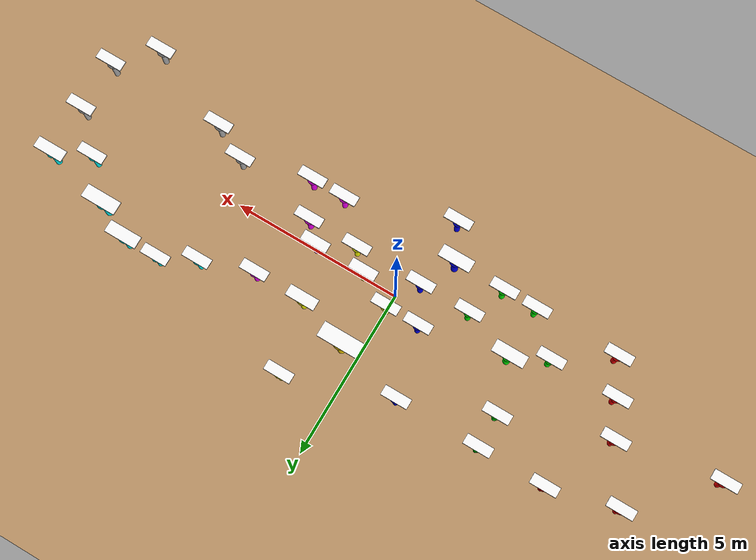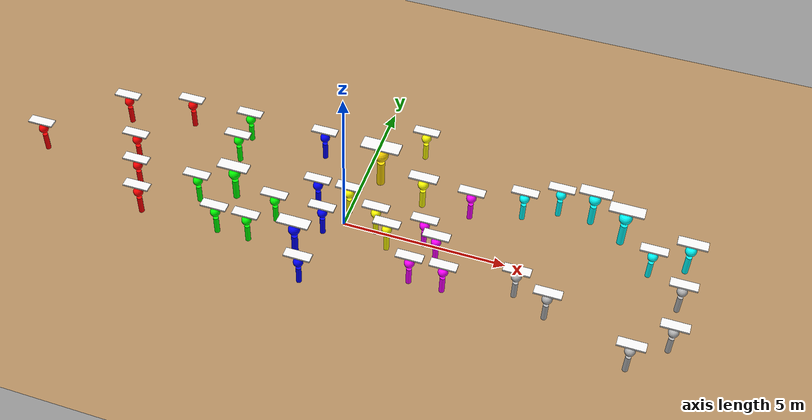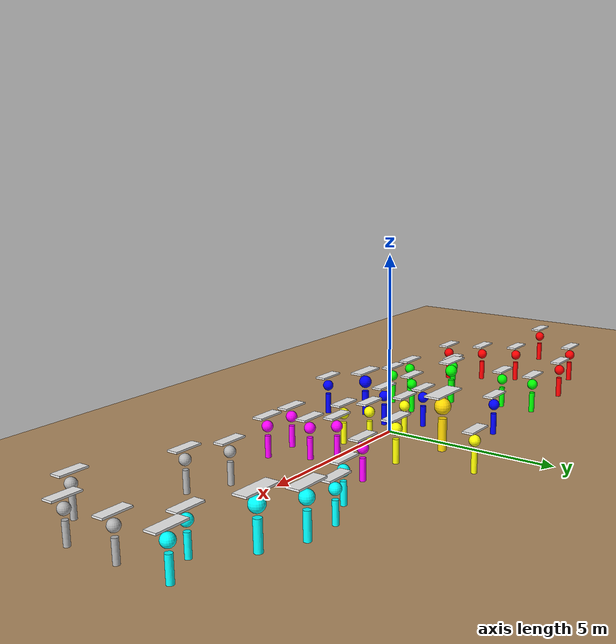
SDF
<?xml version="1.0" ?>
<sdf version="1.8">
  <world name="default">
    <!-- Physics -->
    <physics name="1ms" type="ignored">
      <max_step_size>0.001</max_step_size>
      <real_time_factor>1.0</real_time_factor>
    </physics>

    <!-- Plugins -->
    <plugin filename="gz-sim-physics-system" name="gz::sim::systems::Physics"></plugin>
    <plugin filename="gz-sim-user-commands-system" name="gz::sim::systems::UserCommands"></plugin>
    <plugin filename="gz-sim-scene-broadcaster-system" name="gz::sim::systems::SceneBroadcaster"></plugin>

    <!-- Lighting - Ethiopian Sun -->
    <light type="directional" name="sun">
      <cast_shadows>true</cast_shadows>
      <pose>0 0 10 0 0 0</pose>
      <diffuse>1.0 0.95 0.8 1</diffuse>
      <specular>0.3 0.3 0.2 1</specular>
      <attenuation>
        <range>1000</range>
        <constant>0.9</constant>
        <linear>0.01</linear>
        <quadratic>0.001</quadratic>
      </attenuation>
      <direction>-0.5 0.1 -0.9</direction>
    </light>

    <!-- Ground Plane - Ethiopian Highlands Terrain -->
    <model name="ground_plane">
      <static>true</static>
      <link name="link">
        <collision name="collision">
          <geometry>
            <plane>
              <normal>0 0 1</normal>
              <size>100 100</size>
            </plane>
          </geometry>
        </collision>
        <visual name="visual">
          <geometry>
            <plane>
              <normal>0 0 1</normal>
              <size>100 100</size>
            </plane>
          </geometry>
          <material>
            <ambient>0.65 0.50 0.35 1</ambient>
            <diffuse>0.70 0.55 0.38 1</diffuse>
            <specular>0.1 0.1 0.1 1</specular>
          </material>
        </visual>
      </link>
    </model>

    <!-- City Markers -->

    <model name="Gambela">
      <pose>-10.0 0.0 0 0 0 0</pose>
      <static>true</static>
      <link name="link">
        <!-- Base pillar -->
        <visual name="pillar">
          <pose>0 0 0.3 0 0 0</pose>
          <geometry>
            <cylinder><radius>0.08</radius><length>0.6</length></cylinder>
          </geometry>
          <material>
            <ambient>1 0 0 1</ambient>
            <diffuse>1 0 0 1</diffuse>
          </material>
        </visual>
        <!-- City marker sphere -->
        <visual name="marker">
          <pose>0 0 0.85 0 0 0</pose>
          <geometry>
            <sphere><radius>0.15</radius></sphere>
          </geometry>
          <material>
            <ambient>1 0 0 1</ambient>
            <diffuse>1 0 0 1</diffuse>
            <emissive>0.3 0.0 0.0 1</emissive>
          </material>
        </visual>
        <!-- Name plate -->
        <visual name="nameplate">
          <pose>0 0 1.15 0 0 0</pose>
          <geometry>
            <box><size>0.8 0.3 0.05</size></box>
          </geometry>
          <material>
            <ambient>0.95 0.95 0.95 1</ambient>
            <diffuse>0.95 0.95 0.95 1</diffuse>
          </material>
        </visual>
      </link>
    </model>

    <model name="Dembi_Dollo">
      <pose>-8.0 2.0 0 0 0 0</pose>
      <static>true</static>
      <link name="link">
        <!-- Base pillar -->
        <visual name="pillar">
          <pose>0 0 0.3 0 0 0</pose>
          <geometry>
            <cylinder><radius>0.08</radius><length>0.6</length></cylinder>
          </geometry>
          <material>
            <ambient>1 0 0 1</ambient>
            <diffuse>1 0 0 1</diffuse>
          </material>
        </visual>
        <!-- City marker sphere -->
        <visual name="marker">
          <pose>0 0 0.85 0 0 0</pose>
          <geometry>
            <sphere><radius>0.15</radius></sphere>
          </geometry>
          <material>
            <ambient>1 0 0 1</ambient>
            <diffuse>1 0 0 1</diffuse>
            <emissive>0.3 0.0 0.0 1</emissive>
          </material>
        </visual>
        <!-- Name plate -->
        <visual name="nameplate">
          <pose>0 0 1.15 0 0 0</pose>
          <geometry>
            <box><size>0.8 0.3 0.05</size></box>
          </geometry>
          <material>
            <ambient>0.95 0.95 0.95 1</ambient>
            <diffuse>0.95 0.95 0.95 1</diffuse>
          </material>
        </visual>
      </link>
    </model>

    <model name="Gore">
      <pose>-7.0 0.5 0 0 0 0</pose>
      <static>true</static>
      <link name="link">
        <!-- Base pillar -->
        <visual name="pillar">
          <pose>0 0 0.3 0 0 0</pose>
          <geometry>
            <cylinder><radius>0.08</radius><length>0.6</length></cylinder>
          </geometry>
          <material>
            <ambient>1 0 0 1</ambient>
            <diffuse>1 0 0 1</diffuse>
          </material>
        </visual>
        <!-- City marker sphere -->
        <visual name="marker">
          <pose>0 0 0.85 0 0 0</pose>
          <geometry>
            <sphere><radius>0.15</radius></sphere>
          </geometry>
          <material>
            <ambient>1 0 0 1</ambient>
            <diffuse>1 0 0 1</diffuse>
            <emissive>0.3 0.0 0.0 1</emissive>
          </material>
        </visual>
        <!-- Name plate -->
        <visual name="nameplate">
          <pose>0 0 1.15 0 0 0</pose>
          <geometry>
            <box><size>0.8 0.3 0.05</size></box>
          </geometry>
          <material>
            <ambient>0.95 0.95 0.95 1</ambient>
            <diffuse>0.95 0.95 0.95 1</diffuse>
          </material>
        </visual>
      </link>
    </model>

    <model name="Gimbi">
      <pose>-6.0 2.5 0 0 0 0</pose>
      <static>true</static>
      <link name="link">
        <!-- Base pillar -->
        <visual name="pillar">
          <pose>0 0 0.3 0 0 0</pose>
          <geometry>
            <cylinder><radius>0.08</radius><length>0.6</length></cylinder>
          </geometry>
          <material>
            <ambient>1 0 0 1</ambient>
            <diffuse>1 0 0 1</diffuse>
          </material>
        </visual>
        <!-- City marker sphere -->
        <visual name="marker">
          <pose>0 0 0.85 0 0 0</pose>
          <geometry>
            <sphere><radius>0.15</radius></sphere>
          </geometry>
          <material>
            <ambient>1 0 0 1</ambient>
            <diffuse>1 0 0 1</diffuse>
            <emissive>0.3 0.0 0.0 1</emissive>
          </material>
        </visual>
        <!-- Name plate -->
        <visual name="nameplate">
          <pose>0 0 1.15 0 0 0</pose>
          <geometry>
            <box><size>0.8 0.3 0.05</size></box>
          </geometry>
          <material>
            <ambient>0.95 0.95 0.95 1</ambient>
            <diffuse>0.95 0.95 0.95 1</diffuse>
          </material>
        </visual>
      </link>
    </model>

    <model name="Tepi">
      <pose>-6.5 -0.5 0 0 0 0</pose>
      <static>true</static>
      <link name="link">
        <!-- Base pillar -->
        <visual name="pillar">
          <pose>0 0 0.3 0 0 0</pose>
          <geometry>
            <cylinder><radius>0.08</radius><length>0.6</length></cylinder>
          </geometry>
          <material>
            <ambient>1 0 0 1</ambient>
            <diffuse>1 0 0 1</diffuse>
          </material>
        </visual>
        <!-- City marker sphere -->
        <visual name="marker">
          <pose>0 0 0.85 0 0 0</pose>
          <geometry>
            <sphere><radius>0.15</radius></sphere>
          </geometry>
          <material>
            <ambient>1 0 0 1</ambient>
            <diffuse>1 0 0 1</diffuse>
            <emissive>0.3 0.0 0.0 1</emissive>
          </material>
        </visual>
        <!-- Name plate -->
        <visual name="nameplate">
          <pose>0 0 1.15 0 0 0</pose>
          <geometry>
            <box><size>0.8 0.3 0.05</size></box>
          </geometry>
          <material>
            <ambient>0.95 0.95 0.95 1</ambient>
            <diffuse>0.95 0.95 0.95 1</diffuse>
          </material>
        </visual>
      </link>
    </model>

    <model name="Mezan_Teferi">
      <pose>-6.0 -1.5 0 0 0 0</pose>
      <static>true</static>
      <link name="link">
        <!-- Base pillar -->
        <visual name="pillar">
          <pose>0 0 0.3 0 0 0</pose>
          <geometry>
            <cylinder><radius>0.08</radius><length>0.6</length></cylinder>
          </geometry>
          <material>
            <ambient>1 0 0 1</ambient>
            <diffuse>1 0 0 1</diffuse>
          </material>
        </visual>
        <!-- City marker sphere -->
        <visual name="marker">
          <pose>0 0 0.85 0 0 0</pose>
          <geometry>
            <sphere><radius>0.15</radius></sphere>
          </geometry>
          <material>
            <ambient>1 0 0 1</ambient>
            <diffuse>1 0 0 1</diffuse>
            <emissive>0.3 0.0 0.0 1</emissive>
          </material>
        </visual>
        <!-- Name plate -->
        <visual name="nameplate">
          <pose>0 0 1.15 0 0 0</pose>
          <geometry>
            <box><size>0.8 0.3 0.05</size></box>
          </geometry>
          <material>
            <ambient>0.95 0.95 0.95 1</ambient>
            <diffuse>0.95 0.95 0.95 1</diffuse>
          </material>
        </visual>
      </link>
    </model>

    <model name="Nekemte">
      <pose>-4.0 2.5 0 0 0 0</pose>
      <static>true</static>
      <link name="link">
        <!-- Base pillar -->
        <visual name="pillar">
          <pose>0 0 0.3 0 0 0</pose>
          <geometry>
            <cylinder><radius>0.08</radius><length>0.6</length></cylinder>
          </geometry>
          <material>
            <ambient>0 1 0 1</ambient>
            <diffuse>0 1 0 1</diffuse>
          </material>
        </visual>
        <!-- City marker sphere -->
        <visual name="marker">
          <pose>0 0 0.85 0 0 0</pose>
          <geometry>
            <sphere><radius>0.15</radius></sphere>
          </geometry>
          <material>
            <ambient>0 1 0 1</ambient>
            <diffuse>0 1 0 1</diffuse>
            <emissive>0.0 0.3 0.0 1</emissive>
          </material>
        </visual>
        <!-- Name plate -->
        <visual name="nameplate">
          <pose>0 0 1.15 0 0 0</pose>
          <geometry>
            <box><size>0.8 0.3 0.05</size></box>
          </geometry>
          <material>
            <ambient>0.95 0.95 0.95 1</ambient>
            <diffuse>0.95 0.95 0.95 1</diffuse>
          </material>
        </visual>
      </link>
    </model>

    <model name="Bedelle">
      <pose>-4.0 1.5 0 0 0 0</pose>
      <static>true</static>
      <link name="link">
        <!-- Base pillar -->
        <visual name="pillar">
          <pose>0 0 0.3 0 0 0</pose>
          <geometry>
            <cylinder><radius>0.08</radius><length>0.6</length></cylinder>
          </geometry>
          <material>
            <ambient>0 1 0 1</ambient>
            <diffuse>0 1 0 1</diffuse>
          </material>
        </visual>
        <!-- City marker sphere -->
        <visual name="marker">
          <pose>0 0 0.85 0 0 0</pose>
          <geometry>
            <sphere><radius>0.15</radius></sphere>
          </geometry>
          <material>
            <ambient>0 1 0 1</ambient>
            <diffuse>0 1 0 1</diffuse>
            <emissive>0.0 0.3 0.0 1</emissive>
          </material>
        </visual>
        <!-- Name plate -->
        <visual name="nameplate">
          <pose>0 0 1.15 0 0 0</pose>
          <geometry>
            <box><size>0.8 0.3 0.05</size></box>
          </geometry>
          <material>
            <ambient>0.95 0.95 0.95 1</ambient>
            <diffuse>0.95 0.95 0.95 1</diffuse>
          </material>
        </visual>
      </link>
    </model>

    <model name="Jimma">
      <pose>-3.5 0.0 0 0 0 0</pose>
      <static>true</static>
      <link name="link">
        <!-- Base pillar -->
        <visual name="pillar">
          <pose>0 0 0.36 0 0 0</pose>
          <geometry>
            <cylinder><radius>0.096</radius><length>0.72</length></cylinder>
          </geometry>
          <material>
            <ambient>0 1 0 1</ambient>
            <diffuse>0 1 0 1</diffuse>
          </material>
        </visual>
        <!-- City marker sphere -->
        <visual name="marker">
          <pose>0 0 0.9999999999999999 0 0 0</pose>
          <geometry>
            <sphere><radius>0.18</radius></sphere>
          </geometry>
          <material>
            <ambient>0 1 0 1</ambient>
            <diffuse>0 1 0 1</diffuse>
            <emissive>0.0 0.3 0.0 1</emissive>
          </material>
        </visual>
        <!-- Name plate -->
        <visual name="nameplate">
          <pose>0 0 1.3299999999999998 0 0 0</pose>
          <geometry>
            <box><size>0.96 0.36 0.05</size></box>
          </geometry>
          <material>
            <ambient>0.95 0.95 0.95 1</ambient>
            <diffuse>0.95 0.95 0.95 1</diffuse>
          </material>
        </visual>
      </link>
    </model>

    <model name="Bonga">
      <pose>-4.5 -0.5 0 0 0 0</pose>
      <static>true</static>
      <link name="link">
        <!-- Base pillar -->
        <visual name="pillar">
          <pose>0 0 0.3 0 0 0</pose>
          <geometry>
            <cylinder><radius>0.08</radius><length>0.6</length></cylinder>
          </geometry>
          <material>
            <ambient>0 1 0 1</ambient>
            <diffuse>0 1 0 1</diffuse>
          </material>
        </visual>
        <!-- City marker sphere -->
        <visual name="marker">
          <pose>0 0 0.85 0 0 0</pose>
          <geometry>
            <sphere><radius>0.15</radius></sphere>
          </geometry>
          <material>
            <ambient>0 1 0 1</ambient>
            <diffuse>0 1 0 1</diffuse>
            <emissive>0.0 0.3 0.0 1</emissive>
          </material>
        </visual>
        <!-- Name plate -->
        <visual name="nameplate">
          <pose>0 0 1.15 0 0 0</pose>
          <geometry>
            <box><size>0.8 0.3 0.05</size></box>
          </geometry>
          <material>
            <ambient>0.95 0.95 0.95 1</ambient>
            <diffuse>0.95 0.95 0.95 1</diffuse>
          </material>
        </visual>
      </link>
    </model>

    <model name="Dawro">
      <pose>-3.5 -1.5 0 0 0 0</pose>
      <static>true</static>
      <link name="link">
        <!-- Base pillar -->
        <visual name="pillar">
          <pose>0 0 0.3 0 0 0</pose>
          <geometry>
            <cylinder><radius>0.08</radius><length>0.6</length></cylinder>
          </geometry>
          <material>
            <ambient>0 1 0 1</ambient>
            <diffuse>0 1 0 1</diffuse>
          </material>
        </visual>
        <!-- City marker sphere -->
        <visual name="marker">
          <pose>0 0 0.85 0 0 0</pose>
          <geometry>
            <sphere><radius>0.15</radius></sphere>
          </geometry>
          <material>
            <ambient>0 1 0 1</ambient>
            <diffuse>0 1 0 1</diffuse>
            <emissive>0.0 0.3 0.0 1</emissive>
          </material>
        </visual>
        <!-- Name plate -->
        <visual name="nameplate">
          <pose>0 0 1.15 0 0 0</pose>
          <geometry>
            <box><size>0.8 0.3 0.05</size></box>
          </geometry>
          <material>
            <ambient>0.95 0.95 0.95 1</ambient>
            <diffuse>0.95 0.95 0.95 1</diffuse>
          </material>
        </visual>
      </link>
    </model>

    <model name="Wolait_Sodo">
      <pose>-2.5 -1.5 0 0 0 0</pose>
      <static>true</static>
      <link name="link">
        <!-- Base pillar -->
        <visual name="pillar">
          <pose>0 0 0.3 0 0 0</pose>
          <geometry>
            <cylinder><radius>0.08</radius><length>0.6</length></cylinder>
          </geometry>
          <material>
            <ambient>0 1 0 1</ambient>
            <diffuse>0 1 0 1</diffuse>
          </material>
        </visual>
        <!-- City marker sphere -->
        <visual name="marker">
          <pose>0 0 0.85 0 0 0</pose>
          <geometry>
            <sphere><radius>0.15</radius></sphere>
          </geometry>
          <material>
            <ambient>0 1 0 1</ambient>
            <diffuse>0 1 0 1</diffuse>
            <emissive>0.0 0.3 0.0 1</emissive>
          </material>
        </visual>
        <!-- Name plate -->
        <visual name="nameplate">
          <pose>0 0 1.15 0 0 0</pose>
          <geometry>
            <box><size>0.8 0.3 0.05</size></box>
          </geometry>
          <material>
            <ambient>0.95 0.95 0.95 1</ambient>
            <diffuse>0.95 0.95 0.95 1</diffuse>
          </material>
        </visual>
      </link>
    </model>

    <model name="Hossana">
      <pose>-2.0 -0.5 0 0 0 0</pose>
      <static>true</static>
      <link name="link">
        <!-- Base pillar -->
        <visual name="pillar">
          <pose>0 0 0.3 0 0 0</pose>
          <geometry>
            <cylinder><radius>0.08</radius><length>0.6</length></cylinder>
          </geometry>
          <material>
            <ambient>0 1 0 1</ambient>
            <diffuse>0 1 0 1</diffuse>
          </material>
        </visual>
        <!-- City marker sphere -->
        <visual name="marker">
          <pose>0 0 0.85 0 0 0</pose>
          <geometry>
            <sphere><radius>0.15</radius></sphere>
          </geometry>
          <material>
            <ambient>0 1 0 1</ambient>
            <diffuse>0 1 0 1</diffuse>
            <emissive>0.0 0.3 0.0 1</emissive>
          </material>
        </visual>
        <!-- Name plate -->
        <visual name="nameplate">
          <pose>0 0 1.15 0 0 0</pose>
          <geometry>
            <box><size>0.8 0.3 0.05</size></box>
          </geometry>
          <material>
            <ambient>0.95 0.95 0.95 1</ambient>
            <diffuse>0.95 0.95 0.95 1</diffuse>
          </material>
        </visual>
      </link>
    </model>

    <model name="Ambo">
      <pose>-1.5 2.5 0 0 0 0</pose>
      <static>true</static>
      <link name="link">
        <!-- Base pillar -->
        <visual name="pillar">
          <pose>0 0 0.3 0 0 0</pose>
          <geometry>
            <cylinder><radius>0.08</radius><length>0.6</length></cylinder>
          </geometry>
          <material>
            <ambient>0 0 1 1</ambient>
            <diffuse>0 0 1 1</diffuse>
          </material>
        </visual>
        <!-- City marker sphere -->
        <visual name="marker">
          <pose>0 0 0.85 0 0 0</pose>
          <geometry>
            <sphere><radius>0.15</radius></sphere>
          </geometry>
          <material>
            <ambient>0 0 1 1</ambient>
            <diffuse>0 0 1 1</diffuse>
            <emissive>0.0 0.0 0.3 1</emissive>
          </material>
        </visual>
        <!-- Name plate -->
        <visual name="nameplate">
          <pose>0 0 1.15 0 0 0</pose>
          <geometry>
            <box><size>0.8 0.3 0.05</size></box>
          </geometry>
          <material>
            <ambient>0.95 0.95 0.95 1</ambient>
            <diffuse>0.95 0.95 0.95 1</diffuse>
          </material>
        </visual>
      </link>
    </model>

    <model name="Wolkite">
      <pose>-1.0 0.5 0 0 0 0</pose>
      <static>true</static>
      <link name="link">
        <!-- Base pillar -->
        <visual name="pillar">
          <pose>0 0 0.3 0 0 0</pose>
          <geometry>
            <cylinder><radius>0.08</radius><length>0.6</length></cylinder>
          </geometry>
          <material>
            <ambient>0 0 1 1</ambient>
            <diffuse>0 0 1 1</diffuse>
          </material>
        </visual>
        <!-- City marker sphere -->
        <visual name="marker">
          <pose>0 0 0.85 0 0 0</pose>
          <geometry>
            <sphere><radius>0.15</radius></sphere>
          </geometry>
          <material>
            <ambient>0 0 1 1</ambient>
            <diffuse>0 0 1 1</diffuse>
            <emissive>0.0 0.0 0.3 1</emissive>
          </material>
        </visual>
        <!-- Name plate -->
        <visual name="nameplate">
          <pose>0 0 1.15 0 0 0</pose>
          <geometry>
            <box><size>0.8 0.3 0.05</size></box>
          </geometry>
          <material>
            <ambient>0.95 0.95 0.95 1</ambient>
            <diffuse>0.95 0.95 0.95 1</diffuse>
          </material>
        </visual>
      </link>
    </model>

    <model name="Worabe">
      <pose>-0.5 -0.5 0 0 0 0</pose>
      <static>true</static>
      <link name="link">
        <!-- Base pillar -->
        <visual name="pillar">
          <pose>0 0 0.3 0 0 0</pose>
          <geometry>
            <cylinder><radius>0.08</radius><length>0.6</length></cylinder>
          </geometry>
          <material>
            <ambient>0 0 1 1</ambient>
            <diffuse>0 0 1 1</diffuse>
          </material>
        </visual>
        <!-- City marker sphere -->
        <visual name="marker">
          <pose>0 0 0.85 0 0 0</pose>
          <geometry>
            <sphere><radius>0.15</radius></sphere>
          </geometry>
          <material>
            <ambient>0 0 1 1</ambient>
            <diffuse>0 0 1 1</diffuse>
            <emissive>0.0 0.0 0.3 1</emissive>
          </material>
        </visual>
        <!-- Name plate -->
        <visual name="nameplate">
          <pose>0 0 1.15 0 0 0</pose>
          <geometry>
            <box><size>0.8 0.3 0.05</size></box>
          </geometry>
          <material>
            <ambient>0.95 0.95 0.95 1</ambient>
            <diffuse>0.95 0.95 0.95 1</diffuse>
          </material>
        </visual>
      </link>
    </model>

    <model name="Hawassa">
      <pose>-1.0 -1.5 0 0 0 0</pose>
      <static>true</static>
      <link name="link">
        <!-- Base pillar -->
        <visual name="pillar">
          <pose>0 0 0.36 0 0 0</pose>
          <geometry>
            <cylinder><radius>0.096</radius><length>0.72</length></cylinder>
          </geometry>
          <material>
            <ambient>0 0 1 1</ambient>
            <diffuse>0 0 1 1</diffuse>
          </material>
        </visual>
        <!-- City marker sphere -->
        <visual name="marker">
          <pose>0 0 0.9999999999999999 0 0 0</pose>
          <geometry>
            <sphere><radius>0.18</radius></sphere>
          </geometry>
          <material>
            <ambient>0 0 1 1</ambient>
            <diffuse>0 0 1 1</diffuse>
            <emissive>0.0 0.0 0.3 1</emissive>
          </material>
        </visual>
        <!-- Name plate -->
        <visual name="nameplate">
          <pose>0 0 1.3299999999999998 0 0 0</pose>
          <geometry>
            <box><size>0.96 0.36 0.05</size></box>
          </geometry>
          <material>
            <ambient>0.95 0.95 0.95 1</ambient>
            <diffuse>0.95 0.95 0.95 1</diffuse>
          </material>
        </visual>
      </link>
    </model>

    <model name="Dilla">
      <pose>-0.5 -2.5 0 0 0 0</pose>
      <static>true</static>
      <link name="link">
        <!-- Base pillar -->
        <visual name="pillar">
          <pose>0 0 0.3 0 0 0</pose>
          <geometry>
            <cylinder><radius>0.08</radius><length>0.6</length></cylinder>
          </geometry>
          <material>
            <ambient>0 0 1 1</ambient>
            <diffuse>0 0 1 1</diffuse>
          </material>
        </visual>
        <!-- City marker sphere -->
        <visual name="marker">
          <pose>0 0 0.85 0 0 0</pose>
          <geometry>
            <sphere><radius>0.15</radius></sphere>
          </geometry>
          <material>
            <ambient>0 0 1 1</ambient>
            <diffuse>0 0 1 1</diffuse>
            <emissive>0.0 0.0 0.3 1</emissive>
          </material>
        </visual>
        <!-- Name plate -->
        <visual name="nameplate">
          <pose>0 0 1.15 0 0 0</pose>
          <geometry>
            <box><size>0.8 0.3 0.05</size></box>
          </geometry>
          <material>
            <ambient>0.95 0.95 0.95 1</ambient>
            <diffuse>0.95 0.95 0.95 1</diffuse>
          </material>
        </visual>
      </link>
    </model>

    <model name="Addis_Ababa">
      <pose>0.5 2.0 0 0 0 0</pose>
      <static>true</static>
      <link name="link">
        <!-- Base pillar -->
        <visual name="pillar">
          <pose>0 0 0.44999999999999996 0 0 0</pose>
          <geometry>
            <cylinder><radius>0.12</radius><length>0.8999999999999999</length></cylinder>
          </geometry>
          <material>
            <ambient>1 0.84 0 1</ambient>
            <diffuse>1 0.84 0 1</diffuse>
          </material>
        </visual>
        <!-- City marker sphere -->
        <visual name="marker">
          <pose>0 0 1.225 0 0 0</pose>
          <geometry>
            <sphere><radius>0.22499999999999998</radius></sphere>
          </geometry>
          <material>
            <ambient>1 0.84 0 1</ambient>
            <diffuse>1 0.84 0 1</diffuse>
            <emissive>0.3 0.252 0.0 1</emissive>
          </material>
        </visual>
        <!-- Name plate -->
        <visual name="nameplate">
          <pose>0 0 1.6 0 0 0</pose>
          <geometry>
            <box><size>1.2000000000000002 0.44999999999999996 0.05</size></box>
          </geometry>
          <material>
            <ambient>0.95 0.95 0.95 1</ambient>
            <diffuse>0.95 0.95 0.95 1</diffuse>
          </material>
        </visual>
      </link>
    </model>

    <model name="Debra_Birhan">
      <pose>1.5 3.5 0 0 0 0</pose>
      <static>true</static>
      <link name="link">
        <!-- Base pillar -->
        <visual name="pillar">
          <pose>0 0 0.3 0 0 0</pose>
          <geometry>
            <cylinder><radius>0.08</radius><length>0.6</length></cylinder>
          </geometry>
          <material>
            <ambient>1 1 0 1</ambient>
            <diffuse>1 1 0 1</diffuse>
          </material>
        </visual>
        <!-- City marker sphere -->
        <visual name="marker">
          <pose>0 0 0.85 0 0 0</pose>
          <geometry>
            <sphere><radius>0.15</radius></sphere>
          </geometry>
          <material>
            <ambient>1 1 0 1</ambient>
            <diffuse>1 1 0 1</diffuse>
            <emissive>0.3 0.3 0.0 1</emissive>
          </material>
        </visual>
        <!-- Name plate -->
        <visual name="nameplate">
          <pose>0 0 1.15 0 0 0</pose>
          <geometry>
            <box><size>0.8 0.3 0.05</size></box>
          </geometry>
          <material>
            <ambient>0.95 0.95 0.95 1</ambient>
            <diffuse>0.95 0.95 0.95 1</diffuse>
          </material>
        </visual>
      </link>
    </model>

    <model name="Buta_Jirra">
      <pose>0.0 0.5 0 0 0 0</pose>
      <static>true</static>
      <link name="link">
        <!-- Base pillar -->
        <visual name="pillar">
          <pose>0 0 0.3 0 0 0</pose>
          <geometry>
            <cylinder><radius>0.08</radius><length>0.6</length></cylinder>
          </geometry>
          <material>
            <ambient>1 1 0 1</ambient>
            <diffuse>1 1 0 1</diffuse>
          </material>
        </visual>
        <!-- City marker sphere -->
        <visual name="marker">
          <pose>0 0 0.85 0 0 0</pose>
          <geometry>
            <sphere><radius>0.15</radius></sphere>
          </geometry>
          <material>
            <ambient>1 1 0 1</ambient>
            <diffuse>1 1 0 1</diffuse>
            <emissive>0.3 0.3 0.0 1</emissive>
          </material>
        </visual>
        <!-- Name plate -->
        <visual name="nameplate">
          <pose>0 0 1.15 0 0 0</pose>
          <geometry>
            <box><size>0.8 0.3 0.05</size></box>
          </geometry>
          <material>
            <ambient>0.95 0.95 0.95 1</ambient>
            <diffuse>0.95 0.95 0.95 1</diffuse>
          </material>
        </visual>
      </link>
    </model>

    <model name="Adama">
      <pose>2.0 1.5 0 0 0 0</pose>
      <static>true</static>
      <link name="link">
        <!-- Base pillar -->
        <visual name="pillar">
          <pose>0 0 0.33 0 0 0</pose>
          <geometry>
            <cylinder><radius>0.08800000000000001</radius><length>0.66</length></cylinder>
          </geometry>
          <material>
            <ambient>1 1 0 1</ambient>
            <diffuse>1 1 0 1</diffuse>
          </material>
        </visual>
        <!-- City marker sphere -->
        <visual name="marker">
          <pose>0 0 0.925 0 0 0</pose>
          <geometry>
            <sphere><radius>0.165</radius></sphere>
          </geometry>
          <material>
            <ambient>1 1 0 1</ambient>
            <diffuse>1 1 0 1</diffuse>
            <emissive>0.3 0.3 0.0 1</emissive>
          </material>
        </visual>
        <!-- Name plate -->
        <visual name="nameplate">
          <pose>0 0 1.24 0 0 0</pose>
          <geometry>
            <box><size>0.8800000000000001 0.33 0.05</size></box>
          </geometry>
          <material>
            <ambient>0.95 0.95 0.95 1</ambient>
            <diffuse>0.95 0.95 0.95 1</diffuse>
          </material>
        </visual>
      </link>
    </model>

    <model name="Batu">
      <pose>1.0 0.0 0 0 0 0</pose>
      <static>true</static>
      <link name="link">
        <!-- Base pillar -->
        <visual name="pillar">
          <pose>0 0 0.3 0 0 0</pose>
          <geometry>
            <cylinder><radius>0.08</radius><length>0.6</length></cylinder>
          </geometry>
          <material>
            <ambient>1 1 0 1</ambient>
            <diffuse>1 1 0 1</diffuse>
          </material>
        </visual>
        <!-- City marker sphere -->
        <visual name="marker">
          <pose>0 0 0.85 0 0 0</pose>
          <geometry>
            <sphere><radius>0.15</radius></sphere>
          </geometry>
          <material>
            <ambient>1 1 0 1</ambient>
            <diffuse>1 1 0 1</diffuse>
            <emissive>0.3 0.3 0.0 1</emissive>
          </material>
        </visual>
        <!-- Name plate -->
        <visual name="nameplate">
          <pose>0 0 1.15 0 0 0</pose>
          <geometry>
            <box><size>0.8 0.3 0.05</size></box>
          </geometry>
          <material>
            <ambient>0.95 0.95 0.95 1</ambient>
            <diffuse>0.95 0.95 0.95 1</diffuse>
          </material>
        </visual>
      </link>
    </model>

    <model name="Shashemene">
      <pose>1.5 -0.5 0 0 0 0</pose>
      <static>true</static>
      <link name="link">
        <!-- Base pillar -->
        <visual name="pillar">
          <pose>0 0 0.3 0 0 0</pose>
          <geometry>
            <cylinder><radius>0.08</radius><length>0.6</length></cylinder>
          </geometry>
          <material>
            <ambient>1 1 0 1</ambient>
            <diffuse>1 1 0 1</diffuse>
          </material>
        </visual>
        <!-- City marker sphere -->
        <visual name="marker">
          <pose>0 0 0.85 0 0 0</pose>
          <geometry>
            <sphere><radius>0.15</radius></sphere>
          </geometry>
          <material>
            <ambient>1 1 0 1</ambient>
            <diffuse>1 1 0 1</diffuse>
            <emissive>0.3 0.3 0.0 1</emissive>
          </material>
        </visual>
        <!-- Name plate -->
        <visual name="nameplate">
          <pose>0 0 1.15 0 0 0</pose>
          <geometry>
            <box><size>0.8 0.3 0.05</size></box>
          </geometry>
          <material>
            <ambient>0.95 0.95 0.95 1</ambient>
            <diffuse>0.95 0.95 0.95 1</diffuse>
          </material>
        </visual>
      </link>
    </model>

    <model name="Matahara">
      <pose>3.5 1.5 0 0 0 0</pose>
      <static>true</static>
      <link name="link">
        <!-- Base pillar -->
        <visual name="pillar">
          <pose>0 0 0.3 0 0 0</pose>
          <geometry>
            <cylinder><radius>0.08</radius><length>0.6</length></cylinder>
          </geometry>
          <material>
            <ambient>1 0 1 1</ambient>
            <diffuse>1 0 1 1</diffuse>
          </material>
        </visual>
        <!-- City marker sphere -->
        <visual name="marker">
          <pose>0 0 0.85 0 0 0</pose>
          <geometry>
            <sphere><radius>0.15</radius></sphere>
          </geometry>
          <material>
            <ambient>1 0 1 1</ambient>
            <diffuse>1 0 1 1</diffuse>
            <emissive>0.3 0.0 0.3 1</emissive>
          </material>
        </visual>
        <!-- Name plate -->
        <visual name="nameplate">
          <pose>0 0 1.15 0 0 0</pose>
          <geometry>
            <box><size>0.8 0.3 0.05</size></box>
          </geometry>
          <material>
            <ambient>0.95 0.95 0.95 1</ambient>
            <diffuse>0.95 0.95 0.95 1</diffuse>
          </material>
        </visual>
      </link>
    </model>

    <model name="Assella">
      <pose>2.5 0.0 0 0 0 0</pose>
      <static>true</static>
      <link name="link">
        <!-- Base pillar -->
        <visual name="pillar">
          <pose>0 0 0.3 0 0 0</pose>
          <geometry>
            <cylinder><radius>0.08</radius><length>0.6</length></cylinder>
          </geometry>
          <material>
            <ambient>1 0 1 1</ambient>
            <diffuse>1 0 1 1</diffuse>
          </material>
        </visual>
        <!-- City marker sphere -->
        <visual name="marker">
          <pose>0 0 0.85 0 0 0</pose>
          <geometry>
            <sphere><radius>0.15</radius></sphere>
          </geometry>
          <material>
            <ambient>1 0 1 1</ambient>
            <diffuse>1 0 1 1</diffuse>
            <emissive>0.3 0.0 0.3 1</emissive>
          </material>
        </visual>
        <!-- Name plate -->
        <visual name="nameplate">
          <pose>0 0 1.15 0 0 0</pose>
          <geometry>
            <box><size>0.8 0.3 0.05</size></box>
          </geometry>
          <material>
            <ambient>0.95 0.95 0.95 1</ambient>
            <diffuse>0.95 0.95 0.95 1</diffuse>
          </material>
        </visual>
      </link>
    </model>

    <model name="Assasa">
      <pose>3.0 -0.5 0 0 0 0</pose>
      <static>true</static>
      <link name="link">
        <!-- Base pillar -->
        <visual name="pillar">
          <pose>0 0 0.3 0 0 0</pose>
          <geometry>
            <cylinder><radius>0.08</radius><length>0.6</length></cylinder>
          </geometry>
          <material>
            <ambient>1 0 1 1</ambient>
            <diffuse>1 0 1 1</diffuse>
          </material>
        </visual>
        <!-- City marker sphere -->
        <visual name="marker">
          <pose>0 0 0.85 0 0 0</pose>
          <geometry>
            <sphere><radius>0.15</radius></sphere>
          </geometry>
          <material>
            <ambient>1 0 1 1</ambient>
            <diffuse>1 0 1 1</diffuse>
            <emissive>0.3 0.0 0.3 1</emissive>
          </material>
        </visual>
        <!-- Name plate -->
        <visual name="nameplate">
          <pose>0 0 1.15 0 0 0</pose>
          <geometry>
            <box><size>0.8 0.3 0.05</size></box>
          </geometry>
          <material>
            <ambient>0.95 0.95 0.95 1</ambient>
            <diffuse>0.95 0.95 0.95 1</diffuse>
          </material>
        </visual>
      </link>
    </model>

    <model name="Dodola">
      <pose>2.5 -1.5 0 0 0 0</pose>
      <static>true</static>
      <link name="link">
        <!-- Base pillar -->
        <visual name="pillar">
          <pose>0 0 0.3 0 0 0</pose>
          <geometry>
            <cylinder><radius>0.08</radius><length>0.6</length></cylinder>
          </geometry>
          <material>
            <ambient>1 0 1 1</ambient>
            <diffuse>1 0 1 1</diffuse>
          </material>
        </visual>
        <!-- City marker sphere -->
        <visual name="marker">
          <pose>0 0 0.85 0 0 0</pose>
          <geometry>
            <sphere><radius>0.15</radius></sphere>
          </geometry>
          <material>
            <ambient>1 0 1 1</ambient>
            <diffuse>1 0 1 1</diffuse>
            <emissive>0.3 0.0 0.3 1</emissive>
          </material>
        </visual>
        <!-- Name plate -->
        <visual name="nameplate">
          <pose>0 0 1.15 0 0 0</pose>
          <geometry>
            <box><size>0.8 0.3 0.05</size></box>
          </geometry>
          <material>
            <ambient>0.95 0.95 0.95 1</ambient>
            <diffuse>0.95 0.95 0.95 1</diffuse>
          </material>
        </visual>
      </link>
    </model>

    <model name="Bale">
      <pose>3.5 -1.5 0 0 0 0</pose>
      <static>true</static>
      <link name="link">
        <!-- Base pillar -->
        <visual name="pillar">
          <pose>0 0 0.3 0 0 0</pose>
          <geometry>
            <cylinder><radius>0.08</radius><length>0.6</length></cylinder>
          </geometry>
          <material>
            <ambient>1 0 1 1</ambient>
            <diffuse>1 0 1 1</diffuse>
          </material>
        </visual>
        <!-- City marker sphere -->
        <visual name="marker">
          <pose>0 0 0.85 0 0 0</pose>
          <geometry>
            <sphere><radius>0.15</radius></sphere>
          </geometry>
          <material>
            <ambient>1 0 1 1</ambient>
            <diffuse>1 0 1 1</diffuse>
            <emissive>0.3 0.0 0.3 1</emissive>
          </material>
        </visual>
        <!-- Name plate -->
        <visual name="nameplate">
          <pose>0 0 1.15 0 0 0</pose>
          <geometry>
            <box><size>0.8 0.3 0.05</size></box>
          </geometry>
          <material>
            <ambient>0.95 0.95 0.95 1</ambient>
            <diffuse>0.95 0.95 0.95 1</diffuse>
          </material>
        </visual>
      </link>
    </model>

    <model name="Awash">
      <pose>5.0 2.0 0 0 0 0</pose>
      <static>true</static>
      <link name="link">
        <!-- Base pillar -->
        <visual name="pillar">
          <pose>0 0 0.3 0 0 0</pose>
          <geometry>
            <cylinder><radius>0.08</radius><length>0.6</length></cylinder>
          </geometry>
          <material>
            <ambient>0 1 1 1</ambient>
            <diffuse>0 1 1 1</diffuse>
          </material>
        </visual>
        <!-- City marker sphere -->
        <visual name="marker">
          <pose>0 0 0.85 0 0 0</pose>
          <geometry>
            <sphere><radius>0.15</radius></sphere>
          </geometry>
          <material>
            <ambient>0 1 1 1</ambient>
            <diffuse>0 1 1 1</diffuse>
            <emissive>0.0 0.3 0.3 1</emissive>
          </material>
        </visual>
        <!-- Name plate -->
        <visual name="nameplate">
          <pose>0 0 1.15 0 0 0</pose>
          <geometry>
            <box><size>0.8 0.3 0.05</size></box>
          </geometry>
          <material>
            <ambient>0.95 0.95 0.95 1</ambient>
            <diffuse>0.95 0.95 0.95 1</diffuse>
          </material>
        </visual>
      </link>
    </model>

    <model name="Chiro">
      <pose>6.0 2.5 0 0 0 0</pose>
      <static>true</static>
      <link name="link">
        <!-- Base pillar -->
        <visual name="pillar">
          <pose>0 0 0.3 0 0 0</pose>
          <geometry>
            <cylinder><radius>0.08</radius><length>0.6</length></cylinder>
          </geometry>
          <material>
            <ambient>0 1 1 1</ambient>
            <diffuse>0 1 1 1</diffuse>
          </material>
        </visual>
        <!-- City marker sphere -->
        <visual name="marker">
          <pose>0 0 0.85 0 0 0</pose>
          <geometry>
            <sphere><radius>0.15</radius></sphere>
          </geometry>
          <material>
            <ambient>0 1 1 1</ambient>
            <diffuse>0 1 1 1</diffuse>
            <emissive>0.0 0.3 0.3 1</emissive>
          </material>
        </visual>
        <!-- Name plate -->
        <visual name="nameplate">
          <pose>0 0 1.15 0 0 0</pose>
          <geometry>
            <box><size>0.8 0.3 0.05</size></box>
          </geometry>
          <material>
            <ambient>0.95 0.95 0.95 1</ambient>
            <diffuse>0.95 0.95 0.95 1</diffuse>
          </material>
        </visual>
      </link>
    </model>

    <model name="Dire_Dawa">
      <pose>7.0 2.5 0 0 0 0</pose>
      <static>true</static>
      <link name="link">
        <!-- Base pillar -->
        <visual name="pillar">
          <pose>0 0 0.36 0 0 0</pose>
          <geometry>
            <cylinder><radius>0.096</radius><length>0.72</length></cylinder>
          </geometry>
          <material>
            <ambient>0 1 1 1</ambient>
            <diffuse>0 1 1 1</diffuse>
          </material>
        </visual>
        <!-- City marker sphere -->
        <visual name="marker">
          <pose>0 0 0.9999999999999999 0 0 0</pose>
          <geometry>
            <sphere><radius>0.18</radius></sphere>
          </geometry>
          <material>
            <ambient>0 1 1 1</ambient>
            <diffuse>0 1 1 1</diffuse>
            <emissive>0.0 0.3 0.3 1</emissive>
          </material>
        </visual>
        <!-- Name plate -->
        <visual name="nameplate">
          <pose>0 0 1.3299999999999998 0 0 0</pose>
          <geometry>
            <box><size>0.96 0.36 0.05</size></box>
          </geometry>
          <material>
            <ambient>0.95 0.95 0.95 1</ambient>
            <diffuse>0.95 0.95 0.95 1</diffuse>
          </material>
        </visual>
      </link>
    </model>

    <model name="Harar">
      <pose>8.0 2.0 0 0 0 0</pose>
      <static>true</static>
      <link name="link">
        <!-- Base pillar -->
        <visual name="pillar">
          <pose>0 0 0.39 0 0 0</pose>
          <geometry>
            <cylinder><radius>0.10400000000000001</radius><length>0.78</length></cylinder>
          </geometry>
          <material>
            <ambient>0 1 1 1</ambient>
            <diffuse>0 1 1 1</diffuse>
          </material>
        </visual>
        <!-- City marker sphere -->
        <visual name="marker">
          <pose>0 0 1.0750000000000002 0 0 0</pose>
          <geometry>
            <sphere><radius>0.195</radius></sphere>
          </geometry>
          <material>
            <ambient>0 1 1 1</ambient>
            <diffuse>0 1 1 1</diffuse>
            <emissive>0.0 0.3 0.3 1</emissive>
          </material>
        </visual>
        <!-- Name plate -->
        <visual name="nameplate">
          <pose>0 0 1.4200000000000002 0 0 0</pose>
          <geometry>
            <box><size>1.04 0.39 0.05</size></box>
          </geometry>
          <material>
            <ambient>0.95 0.95 0.95 1</ambient>
            <diffuse>0.95 0.95 0.95 1</diffuse>
          </material>
        </visual>
      </link>
    </model>

    <model name="Babile">
      <pose>9.0 1.0 0 0 0 0</pose>
      <static>true</static>
      <link name="link">
        <!-- Base pillar -->
        <visual name="pillar">
          <pose>0 0 0.3 0 0 0</pose>
          <geometry>
            <cylinder><radius>0.08</radius><length>0.6</length></cylinder>
          </geometry>
          <material>
            <ambient>0 1 1 1</ambient>
            <diffuse>0 1 1 1</diffuse>
          </material>
        </visual>
        <!-- City marker sphere -->
        <visual name="marker">
          <pose>0 0 0.85 0 0 0</pose>
          <geometry>
            <sphere><radius>0.15</radius></sphere>
          </geometry>
          <material>
            <ambient>0 1 1 1</ambient>
            <diffuse>0 1 1 1</diffuse>
            <emissive>0.0 0.3 0.3 1</emissive>
          </material>
        </visual>
        <!-- Name plate -->
        <visual name="nameplate">
          <pose>0 0 1.15 0 0 0</pose>
          <geometry>
            <box><size>0.8 0.3 0.05</size></box>
          </geometry>
          <material>
            <ambient>0.95 0.95 0.95 1</ambient>
            <diffuse>0.95 0.95 0.95 1</diffuse>
          </material>
        </visual>
      </link>
    </model>

    <model name="Jijiga">
      <pose>10.0 1.5 0 0 0 0</pose>
      <static>true</static>
      <link name="link">
        <!-- Base pillar -->
        <visual name="pillar">
          <pose>0 0 0.33 0 0 0</pose>
          <geometry>
            <cylinder><radius>0.08800000000000001</radius><length>0.66</length></cylinder>
          </geometry>
          <material>
            <ambient>0 1 1 1</ambient>
            <diffuse>0 1 1 1</diffuse>
          </material>
        </visual>
        <!-- City marker sphere -->
        <visual name="marker">
          <pose>0 0 0.925 0 0 0</pose>
          <geometry>
            <sphere><radius>0.165</radius></sphere>
          </geometry>
          <material>
            <ambient>0 1 1 1</ambient>
            <diffuse>0 1 1 1</diffuse>
            <emissive>0.0 0.3 0.3 1</emissive>
          </material>
        </visual>
        <!-- Name plate -->
        <visual name="nameplate">
          <pose>0 0 1.24 0 0 0</pose>
          <geometry>
            <box><size>0.8800000000000001 0.33 0.05</size></box>
          </geometry>
          <material>
            <ambient>0.95 0.95 0.95 1</ambient>
            <diffuse>0.95 0.95 0.95 1</diffuse>
          </material>
        </visual>
      </link>
    </model>

    <model name="Dega_Habur">
      <pose>10.0 0.0 0 0 0 0</pose>
      <static>true</static>
      <link name="link">
        <!-- Base pillar -->
        <visual name="pillar">
          <pose>0 0 0.3 0 0 0</pose>
          <geometry>
            <cylinder><radius>0.08</radius><length>0.6</length></cylinder>
          </geometry>
          <material>
            <ambient>0.7 0.7 0.7 1</ambient>
            <diffuse>0.7 0.7 0.7 1</diffuse>
          </material>
        </visual>
        <!-- City marker sphere -->
        <visual name="marker">
          <pose>0 0 0.85 0 0 0</pose>
          <geometry>
            <sphere><radius>0.15</radius></sphere>
          </geometry>
          <material>
            <ambient>0.7 0.7 0.7 1</ambient>
            <diffuse>0.7 0.7 0.7 1</diffuse>
            <emissive>0.21 0.21 0.21 1</emissive>
          </material>
        </visual>
        <!-- Name plate -->
        <visual name="nameplate">
          <pose>0 0 1.15 0 0 0</pose>
          <geometry>
            <box><size>0.8 0.3 0.05</size></box>
          </geometry>
          <material>
            <ambient>0.95 0.95 0.95 1</ambient>
            <diffuse>0.95 0.95 0.95 1</diffuse>
          </material>
        </visual>
      </link>
    </model>

    <model name="Goba">
      <pose>5.5 -1.0 0 0 0 0</pose>
      <static>true</static>
      <link name="link">
        <!-- Base pillar -->
        <visual name="pillar">
          <pose>0 0 0.3 0 0 0</pose>
          <geometry>
            <cylinder><radius>0.08</radius><length>0.6</length></cylinder>
          </geometry>
          <material>
            <ambient>0.7 0.7 0.7 1</ambient>
            <diffuse>0.7 0.7 0.7 1</diffuse>
          </material>
        </visual>
        <!-- City marker sphere -->
        <visual name="marker">
          <pose>0 0 0.85 0 0 0</pose>
          <geometry>
            <sphere><radius>0.15</radius></sphere>
          </geometry>
          <material>
            <ambient>0.7 0.7 0.7 1</ambient>
            <diffuse>0.7 0.7 0.7 1</diffuse>
            <emissive>0.21 0.21 0.21 1</emissive>
          </material>
        </visual>
        <!-- Name plate -->
        <visual name="nameplate">
          <pose>0 0 1.15 0 0 0</pose>
          <geometry>
            <box><size>0.8 0.3 0.05</size></box>
          </geometry>
          <material>
            <ambient>0.95 0.95 0.95 1</ambient>
            <diffuse>0.95 0.95 0.95 1</diffuse>
          </material>
        </visual>
      </link>
    </model>

    <model name="Sof_Oumer">
      <pose>6.5 -1.5 0 0 0 0</pose>
      <static>true</static>
      <link name="link">
        <!-- Base pillar -->
        <visual name="pillar">
          <pose>0 0 0.3 0 0 0</pose>
          <geometry>
            <cylinder><radius>0.08</radius><length>0.6</length></cylinder>
          </geometry>
          <material>
            <ambient>0.7 0.7 0.7 1</ambient>
            <diffuse>0.7 0.7 0.7 1</diffuse>
          </material>
        </visual>
        <!-- City marker sphere -->
        <visual name="marker">
          <pose>0 0 0.85 0 0 0</pose>
          <geometry>
            <sphere><radius>0.15</radius></sphere>
          </geometry>
          <material>
            <ambient>0.7 0.7 0.7 1</ambient>
            <diffuse>0.7 0.7 0.7 1</diffuse>
            <emissive>0.21 0.21 0.21 1</emissive>
          </material>
        </visual>
        <!-- Name plate -->
        <visual name="nameplate">
          <pose>0 0 1.15 0 0 0</pose>
          <geometry>
            <box><size>0.8 0.3 0.05</size></box>
          </geometry>
          <material>
            <ambient>0.95 0.95 0.95 1</ambient>
            <diffuse>0.95 0.95 0.95 1</diffuse>
          </material>
        </visual>
      </link>
    </model>

    <model name="Kebri_Dehar">
      <pose>10.0 -1.5 0 0 0 0</pose>
      <static>true</static>
      <link name="link">
        <!-- Base pillar -->
        <visual name="pillar">
          <pose>0 0 0.3 0 0 0</pose>
          <geometry>
            <cylinder><radius>0.08</radius><length>0.6</length></cylinder>
          </geometry>
          <material>
            <ambient>0.7 0.7 0.7 1</ambient>
            <diffuse>0.7 0.7 0.7 1</diffuse>
          </material>
        </visual>
        <!-- City marker sphere -->
        <visual name="marker">
          <pose>0 0 0.85 0 0 0</pose>
          <geometry>
            <sphere><radius>0.15</radius></sphere>
          </geometry>
          <material>
            <ambient>0.7 0.7 0.7 1</ambient>
            <diffuse>0.7 0.7 0.7 1</diffuse>
            <emissive>0.21 0.21 0.21 1</emissive>
          </material>
        </visual>
        <!-- Name plate -->
        <visual name="nameplate">
          <pose>0 0 1.15 0 0 0</pose>
          <geometry>
            <box><size>0.8 0.3 0.05</size></box>
          </geometry>
          <material>
            <ambient>0.95 0.95 0.95 1</ambient>
            <diffuse>0.95 0.95 0.95 1</diffuse>
          </material>
        </visual>
      </link>
    </model>

    <model name="Gode">
      <pose>9.0 -2.5 0 0 0 0</pose>
      <static>true</static>
      <link name="link">
        <!-- Base pillar -->
        <visual name="pillar">
          <pose>0 0 0.3 0 0 0</pose>
          <geometry>
            <cylinder><radius>0.08</radius><length>0.6</length></cylinder>
          </geometry>
          <material>
            <ambient>0.7 0.7 0.7 1</ambient>
            <diffuse>0.7 0.7 0.7 1</diffuse>
          </material>
        </visual>
        <!-- City marker sphere -->
        <visual name="marker">
          <pose>0 0 0.85 0 0 0</pose>
          <geometry>
            <sphere><radius>0.15</radius></sphere>
          </geometry>
          <material>
            <ambient>0.7 0.7 0.7 1</ambient>
            <diffuse>0.7 0.7 0.7 1</diffuse>
            <emissive>0.21 0.21 0.21 1</emissive>
          </material>
        </visual>
        <!-- Name plate -->
        <visual name="nameplate">
          <pose>0 0 1.15 0 0 0</pose>
          <geometry>
            <box><size>0.8 0.3 0.05</size></box>
          </geometry>
          <material>
            <ambient>0.95 0.95 0.95 1</ambient>
            <diffuse>0.95 0.95 0.95 1</diffuse>
          </material>
        </visual>
      </link>
    </model>

  </world>
</sdf>
